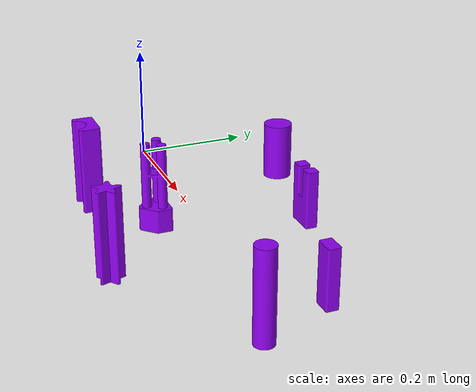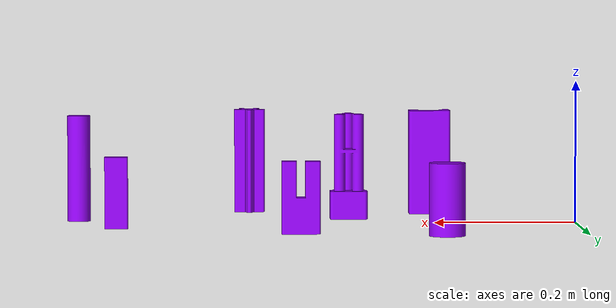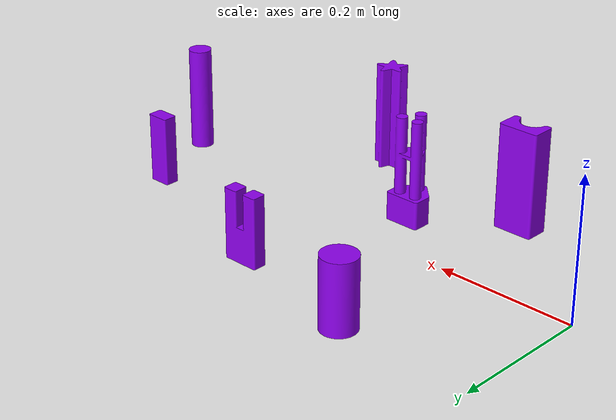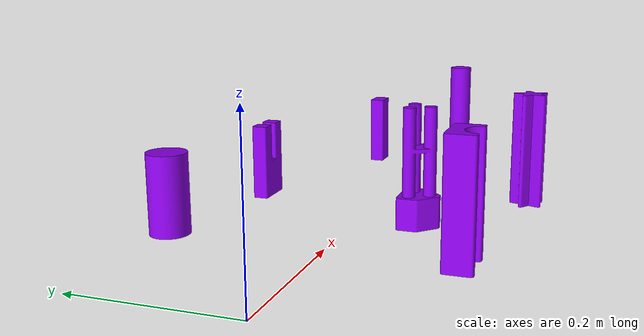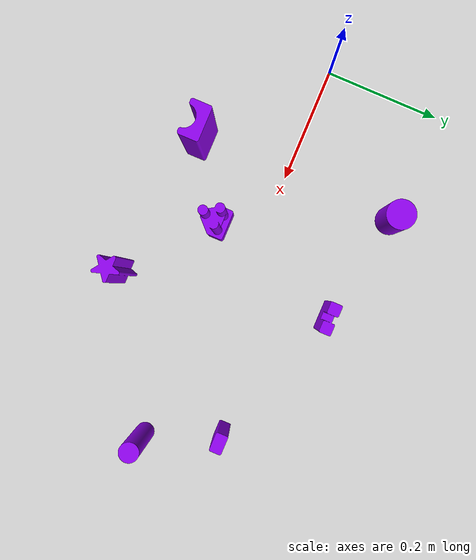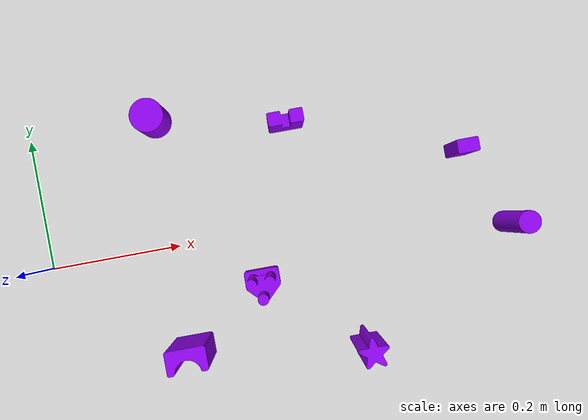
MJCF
<?xml version='1.0' encoding='utf-8'?>
<mujoco model="obj7">
  <asset>
    <mesh name="obj7" file="obj7.obj" scale="0.001 0.001 0.001" />
    <material name="mat7" rgba="0.55686 0 0.92941 1" />
  </asset>
  <worldbody>
    <body>
      <body name="object">
        <geom name="visual" mesh="obj7" type="mesh" group="1" contype="0" conaffinity="0" material="mat7" />
        <geom name="collision" mesh="obj7" type="mesh" group="0" density="50" friction="0.95 0.3 0.1" solimp="0.998 0.998 0.001" solref="0.001 1" condim="4" />
      </body>
      <site name="bottom_site" pos="0 0 -0.025" size="0.005" rgba="0 0 0 0" />
      <site name="top_site" pos="0 0 0.025" size="0.005" rgba="0 0 0 0" />
      <site name="horizontal_radius_site" pos="0.03 0.03 0" size="0.005" rgba="0 0 0 0" />
    </body>
  </worldbody>
</mujoco>
